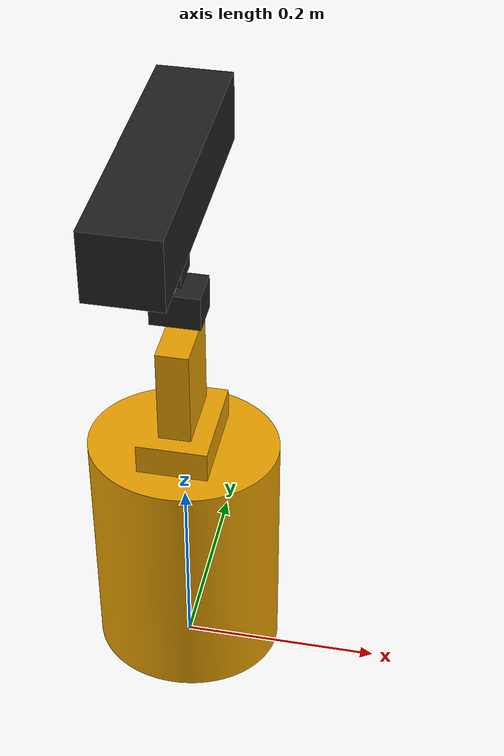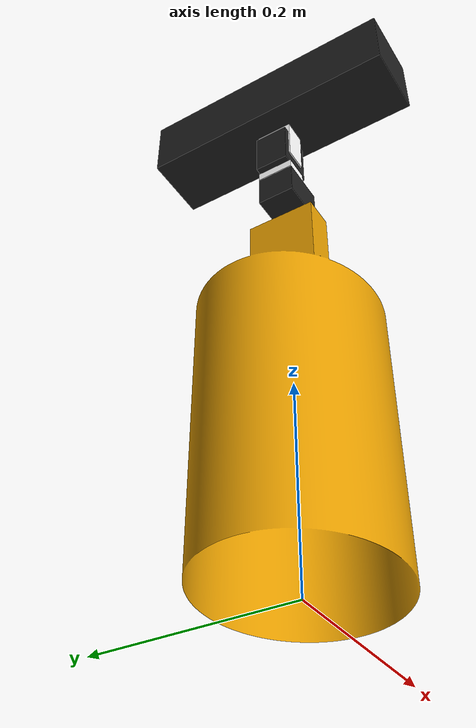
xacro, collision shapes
<?xml version="1.0"?>

<robot name="pedestal_pi_no_gripper" xmlns:xacro="http://ros.org/wiki/xacro">

  <property name="BASE_MESH_SCALE" value="1.0"/>
  <property name="BASE_MESH_COLLISION_SCALE" value="0.0254"/>

  <property name="MESH_SCALE" value="0.001"/>
  <property name="MESH_COLLISION_SCALE" value="0.00105"/>
  <property name="GROUND_CLEARANCE" value="0.004" />
  <property name="LOWER_BASE_HEIGHT" value="0.26" />
  <property name="LOWER_BASE_RADIUS" value="0.075" />

  <material name="Green">
    <color rgba="0.0 0.8 0.0 1.0"/>
  </material>

  <material name="OffWhite">
    <color rgba="0.8 0.8 0.8 0.9"/>
  </material>

  <material name="White">
    <color rgba="1.0 1.0 1.0 1.0"/>
  </material>

  <material name="DarkGray">
     <color rgba="0.3 0.3 0.3 1.0"/>
  </material>

  <material name="LightGray">
     <color rgba="0.6 0.6 0.6 1.0"/>
  </material>

  <material name="Red">
     <color rgba="1.0 0.0 0.0 0.5"/>
  </material>

  <xacro:include filename="$(find rbx2_description)/urdf/pedestal_pi/pedestal_pi_pan_tilt_head.urdf.xacro" />

  <link name="base_link">
    <visual>
      <origin xyz="0 0 ${GROUND_CLEARANCE}" rpy="0 0 1.57" />
      <geometry>
          <mesh filename="package://rbx2_description/meshes/pedestal_pi/pedestal_pi.dae" scale="${BASE_MESH_SCALE} ${BASE_MESH_SCALE} ${BASE_MESH_SCALE}"/>
      </geometry>
    </visual>

    <collision>
      <origin xyz="0 0 ${GROUND_CLEARANCE}" rpy="0 0 1.57" />
       <geometry>
          <mesh filename="package://rbx2_description/meshes/pedestal_pi/pedestal_pi_collision.dae" scale="${BASE_MESH_COLLISION_SCALE} ${BASE_MESH_COLLISION_SCALE} ${BASE_MESH_COLLISION_SCALE}"/>
       </geometry>
     </collision>

   </link>

   <!-- Add a foot_print link and joint -->
   <link name="base_footprint">
    <visual>
      <origin xyz="0 0 0" rpy="0 0 0" />
      <geometry>
         <box size="0.01 0.01 0.0001" />
      </geometry>
    </visual>
   </link>

   <joint name="base_to_footprint" type="fixed">
     <origin xyz="0 0 0" rpy="0 0 0" />
     <parent link="base_link"/>
     <child link="base_footprint" />
   </joint>

   <!-- Attach the head -->
   <head name="head_base" parent="base" color="White">
     <origin xyz="-${AX12_DEPTH/4} 0 ${0.438 + GROUND_CLEARANCE}" rpy="${PI/2} 0 ${PI/2}" />
   </head>

</robot>

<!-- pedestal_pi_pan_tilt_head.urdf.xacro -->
<robot name="pan_tilt_head" xmlns:xacro="http://ros.org/wiki/xacro">

  <property name="camera_offset_x" value="0.0" />
  <property name="camera_offset_y" value="0.0" />
  <property name="camera_offset_z" value="0.0615" />

  <property name="camera_mesh_scale" value="1.0" />

  <xacro:include filename="$(find rbx2_description)/urdf/pi_robot/dynamixel_head_hardware.xacro" />
  <xacro:include filename="$(find rbx2_description)/urdf/pi_robot/kinect.urdf.xacro" />

  <macro name="head" params="parent name color *origin">
    <!-- head base joint -->
    <joint name="${name}_joint" type="fixed">
      <xacro:insert_block name="origin" />
      <parent link="${parent}_link"/>
      <child link="${name}_link" />
    </joint>
    <link name="${name}_link">
      <origin xyz="0 0 0" rpy="0 0 0" />
      <inertial>
        <mass value="0.00001" />
        <inertia ixx="1.0" ixy="0.0" ixz="0.0"
          iyy="1.0" iyz="0.0"
          izz="1.0" />
      </inertial>

      <visual>
        <origin xyz="0 0 0 " rpy="0 0 0" />
        <geometry>
           <cylinder length="0.00001" radius="0.01" />
        </geometry>
      </visual>

      <collision>
        <origin xyz="0 0 0 " rpy="0 0 0" />
        <geometry>
           <cylinder length="0.00001" radius="0.01" />
        </geometry>
      </collision>
    </link>

    <!-- head pan joint -->
    <dynamixel_AX12_fixed parent="head_base" name="head_pan_servo">
       <origin xyz="0 0 0" rpy="0 ${PI} 0" />
    </dynamixel_AX12_fixed>

    <bioloid_F3_head_revolute parent="head_pan_servo" name="head_pan_bracket" joint_name="head_pan" ulimit="2.9" llimit="-2.9" vlimit="1.571" color="${color}">
       <origin xyz="0 ${AX12_WIDTH/2 + 0.005} 0" rpy="${-PI/2} ${PI/2} ${PI}" />
    </bioloid_F3_head_revolute>

    <!--head tilt joint -->
    <dynamixel_AX12_fixed parent="head_pan_bracket" name="head_tilt_servo">
       <origin xyz="0 0 ${-AX12_HEIGHT-F10_HEIGHT+0.001}" rpy="0 ${PI} ${PI}"/>
    </dynamixel_AX12_fixed>

    <bioloid_F2_head_revolute parent="head_tilt_servo" name="head_tilt_bracket" joint_name="head_tilt" ulimit="2.9" llimit="-2.9" vlimit="1.571" color="${color}" >
       <origin xyz="0 0 0" rpy="0 0 0" />
    </bioloid_F2_head_revolute>

   <!-- Attach the camera -->
   <camera name="camera" parent="head_tilt_bracket" color="Black">
      <origin xyz="${camera_offset_x} ${camera_offset_y} ${camera_offset_z}" rpy="0 0 0" />
   </camera>

 </macro>

</robot>

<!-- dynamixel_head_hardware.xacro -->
<robot name="head_hardware" xmlns:xacro="http://ros.org/wiki/xacro">

  <property name="PI" value="3.14159"/>
  <property name="DYNAMIXEL_MESH_SCALE" value="0.001"/>

  <property name="F10_HEIGHT" value="0.004"/>

  <property name="F4_WIDTH" value="0.0480"/>
  <property name="F4_HEIGHT" value="0.0625"/>
  <property name="F4_DEPTH" value="0.0245"/>

  <property name="F2_DEPTH" value="0.0245"/>
  <property name="F2_WIDTH" value="0.0480"/>
  <property name="F2_HEIGHT" value="0.0380"/>

  <property name="F3_WIDTH" value="0.038"/>
  <property name="F3_HEIGHT" value="0.009"/>
  <property name="F3_DEPTH" value="0.025"/>

  <property name="AX12_HEIGHT" value="0.0385"/>
  <property name="AX12_WIDTH" value="0.035"/>
  <property name="AX12_DEPTH" value="0.049"/>

  <macro name="bioloid_F10_fixed" params="parent name color *origin">
    <joint name="${name}_joint" type="fixed">
      <xacro:insert_block name="origin"/>
      <parent link="${parent}_link"/>
      <child link="${name}_link" />
    </joint>

    <link name="${name}_link">
      <inertial>
        <mass value="0.00001" />
        <origin xyz="0 0 0" />
        <inertia ixx="1.0" ixy="0.0" ixz="0.0"
          iyy="1.0" iyz="0.0"
          izz="1.0" />
      </inertial>

      <visual>
        <origin xyz="0 0 0 " rpy="0 0 0" />
        <geometry>
          <mesh filename="package://rbx2_description/meshes/F10.stl" scale="${DYNAMIXEL_MESH_SCALE} ${DYNAMIXEL_MESH_SCALE} ${DYNAMIXEL_MESH_SCALE}"/>
        </geometry>
        <material name="${color}"/>
      </visual>

      <collision>
        <origin xyz="0 0 0" rpy="0 0 0" />
        <geometry>
          <box size="0.025 0.038 0.004"/>
        </geometry>
      </collision>
    </link>
  </macro>

  <macro name="bioloid_F3_fixed" params="parent name color *origin">
    <joint name="${name}_joint" type="fixed">
      <xacro:insert_block name="origin"/>
      <parent link="${parent}_link"/>
      <child link="${name}_link" />
    </joint>

    <link name="${name}_link">
      <inertial>
        <mass value="0.00001" />
        <origin xyz="0 0 0" />
        <inertia ixx="1.0" ixy="0.0" ixz="0.0"
          iyy="1.0" iyz="0.0"
          izz="1.0" />
      </inertial>

      <visual>
        <origin xyz="0 0 0 " rpy="0 0 0" />
        <geometry>
          <mesh filename="package://rbx2_description/meshes/F3.stl" scale="${DYNAMIXEL_MESH_SCALE} ${DYNAMIXEL_MESH_SCALE} ${DYNAMIXEL_MESH_SCALE}"/>
        </geometry>
        <material name="${color}"/>
      </visual>

      <collision>
        <origin xyz="0 0 0" rpy="0 0 0" />
        <geometry>
          <box size="${F3_WIDTH} ${F3_HEIGHT} ${F3_DEPTH}"/>
        </geometry>
      </collision>
    </link>
  </macro>

  <macro name="dynamixel_AX12_fixed" params="parent name *origin">
    <joint name="${name}_joint" type="fixed">
      <xacro:insert_block name="origin" />
      <parent link="${parent}_link"/>
      <child link="${name}_link" />
    </joint>

    <link name="${name}_link">
      <inertial>
        <mass value="0.00001" />
        <origin xyz="0 0 0" />
        <inertia ixx="1.0" ixy="0.0" ixz="0.0"
          iyy="1.0" iyz="0.0"
          izz="1.0" />
      </inertial>

      <visual>
        <origin xyz="0 0 0 " rpy="0 0 0" />
        <geometry>
          <mesh filename="package://rbx2_description/meshes/ax12.stl" scale="${DYNAMIXEL_MESH_SCALE} ${DYNAMIXEL_MESH_SCALE} ${DYNAMIXEL_MESH_SCALE}"/>
        </geometry>
        <material name="Black"/>
      </visual>

      <collision>
        <origin xyz="0 0 -0.01241" rpy="0 0 0" />
        <geometry>
          <box size="${AX12_HEIGHT} ${AX12_WIDTH} ${AX12_DEPTH}"/>
        </geometry>
      </collision>
    </link>
  </macro>

  <macro name="bioloid_F3_head_revolute" params="parent name joint_name ulimit llimit vlimit color *origin">
    <joint name="${joint_name}_joint" type="revolute">
      <xacro:insert_block name="origin" />
      <parent link="${parent}_link"/>
       <axis xyz="0 0 -1"/>
       <limit lower="${llimit}" upper="${ulimit}" velocity="${vlimit}" effort="1.0" />
      <child link="${name}_link" />
    </joint>

    <link name="${name}_link">
      <inertial>
        <mass value="0.00001" />
        <origin xyz="0 0 0" />
        <inertia ixx="1.0" ixy="0.0" ixz="0.0"
          iyy="1.0" iyz="0.0"
          izz="1.0" />
      </inertial>

      <visual>
        <origin xyz="0 0 0 " rpy="0 0 0" />
        <geometry>
          <mesh filename="package://rbx2_description/meshes/F3.stl" scale="${DYNAMIXEL_MESH_SCALE} ${DYNAMIXEL_MESH_SCALE} ${DYNAMIXEL_MESH_SCALE}"/>
        </geometry>
        <material name="${color}"/>
      </visual>

      <collision>
        <origin xyz="0 0 0" rpy="0 0 0" />
        <geometry>
           <box size="${F3_DEPTH} ${F3_WIDTH} ${F3_HEIGHT}"/>
        </geometry>
      </collision>
    </link>
  </macro>

  <macro name="bioloid_F4_head_revolute" params="parent name joint_name ulimit llimit vlimit color *origin">
    <joint name="${joint_name}_joint" type="revolute">
      <xacro:insert_block name="origin"/>
      <parent link="${parent}_link"/>
      <axis xyz="0 -1 0"/>
      <limit lower="${llimit}" upper="${ulimit}" velocity="${vlimit}" effort="1.0" />
      <child link="${name}_link" />
    </joint>

    <link name="${name}_link">
      <inertial>
        <mass value="0.00001" />
        <origin xyz="0 0 0" />
        <inertia ixx="1.0" ixy="0.0" ixz="0.0"
          iyy="1.0" iyz="0.0"
          izz="1.0" />
      </inertial>

      <visual>
        <origin xyz="0 0 0 " rpy="0 0 0" />
        <geometry>
          <mesh filename="package://rbx2_description/meshes/F4.stl" scale="${DYNAMIXEL_MESH_SCALE} ${DYNAMIXEL_MESH_SCALE} ${DYNAMIXEL_MESH_SCALE}"/>
        </geometry>
        <material name="${color}"/>
      </visual>

      <collision>
        <origin xyz="0 0 0" rpy="0 0 0" />
        <geometry>
          <box size="${F4_WIDTH} ${F4_HEIGHT} ${F4_DEPTH}"/>
        </geometry>
      </collision>
    </link>
  </macro>

  <macro name="bioloid_F2_head_revolute" params="parent name joint_name ulimit llimit vlimit color *origin">
    <joint name="${joint_name}_joint" type="revolute">
      <xacro:insert_block name="origin" />
      <parent link="${parent}_link"/>
      <axis xyz="0 1 0"/>
      <limit lower="${llimit}" upper="${ulimit}" velocity="${vlimit}" effort="1.0" />
      <child link="${name}_link" />
    </joint>

    <link name="${name}_link">
      <inertial>
        <mass value="0.00001" />
        <origin xyz="0 0 0" />
        <inertia ixx="1.0" ixy="0.0" ixz="0.0"
          iyy="1.0" iyz="0.0"
          izz="1.0" />
      </inertial>

      <visual>
        <origin xyz="0 0 0 " rpy="0 0 0" />
        <geometry>
          <mesh filename="package://rbx2_description/meshes/F2.stl" scale="${DYNAMIXEL_MESH_SCALE} ${DYNAMIXEL_MESH_SCALE} ${DYNAMIXEL_MESH_SCALE}"/>
        </geometry>
        <material name="${color}"/>
      </visual>

      <collision>
        <origin xyz="0 0 0" rpy="0 0 0" />
        <geometry>
          <box size="${F2_DEPTH} ${F2_HEIGHT} ${F2_WIDTH}"/>
        </geometry>
      </collision>
    </link>
  </macro>

</robot>

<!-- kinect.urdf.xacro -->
<robot name="kinect" xmlns:xacro="http://ros.org/wiki/xacro">

   <!-- Define a number of dimensions using properties -->
   <property name="kinect_size_x" value="0.07271" />
   <property name="kinect_size_y" value="0.27794" />
   <property name="kinect_size_z" value="0.070" />

   <property name="camera_mesh_scale" value="1.0" />

   <property name="PI" value="3.1415" />

   <!-- Define a camera link for a Kinect -->
   <macro name="camera" params="parent name color *origin">
      <joint name="${parent}_${name}_joint" type="fixed">
         <xacro:insert_block name="origin" />
         <parent link="${parent}_link"/>
         <child link="${name}_link"/>
      </joint>
      <link name="${name}_link">
         <visual>
            <origin xyz="0 0 0" rpy="0 0 ${PI/2}" />
            <geometry>
               <mesh filename="package://rbx2_description/meshes/kinect.dae" scale="${camera_mesh_scale} ${camera_mesh_scale} ${camera_mesh_scale}" />
            </geometry>
            <material name="${color}" />
         </visual>
         <collision>
           <origin xyz="0 0 0" rpy="0 0 0" />
           <geometry>
              <box size="${kinect_size_x} ${kinect_size_y} ${kinect_size_z}"/>
           </geometry>
         </collision>
      </link>

      <joint name="camera_depth_joint" type="fixed">
         <origin xyz="0 0.0125 0.015" rpy="0 0 0" />
          <parent link="camera_link" />
          <child link="camera_depth_frame" />
      </joint>

      <link name="camera_depth_frame">
      <inertial>
         <mass value="0.000001" />
         <origin xyz="0 0 0" />
         <inertia ixx="0.0001" ixy="0.0" ixz="0.0"
            iyy="0.0001" iyz="0.0"
            izz="0.0001" />
         </inertial>
      </link>

      <joint name="camera_depth_optical_joint" type="fixed">
         <origin xyz="0 0 0" rpy="${-PI/2} 0 ${-PI/2}" />
         <parent link="camera_depth_frame" />
         <child link="camera_depth_optical_frame" />
      </joint>

      <link name="camera_depth_optical_frame">
         <inertial>
            <mass value="0.000001" />
            <origin xyz="0 0 0" />
            <inertia ixx="0.0001" ixy="0.0" ixz="0.0"
               iyy="0.0001" iyz="0.0"
               izz="0.0001" />
         </inertial>
      </link>

      <joint name="camera_rgb_joint" type="fixed">
         <origin xyz="0 -0.0125 0.015" rpy="0 0 0" />
         <parent link="camera_link" />
         <child link="camera_rgb_frame" />
      </joint>

      <link name="camera_rgb_frame">
         <inertial>
         <mass value="0.000001" />
         <origin xyz="0 0 0" />
         <inertia ixx="0.0001" ixy="0.0" ixz="0.0"
            iyy="0.0001" iyz="0.0"
            izz="0.0001" />
         </inertial>
      </link>

      <joint name="camera_rgb_optical_joint" type="fixed">
         <origin xyz="0 0 0" rpy="${-PI/2} 0 ${-PI/2}" />
         <parent link="camera_rgb_frame" />
         <child link="camera_rgb_optical_frame" />
      </joint>

      <link name="camera_rgb_optical_frame">
         <inertial>
            <mass value="0.000001" />
            <origin xyz="0 0 0" />
            <inertia ixx="0.0001" ixy="0.0" ixz="0.0"
               iyy="0.0001" iyz="0.0"
               izz="0.0001" />
         </inertial>
      </link>

   </macro>

</robot>
